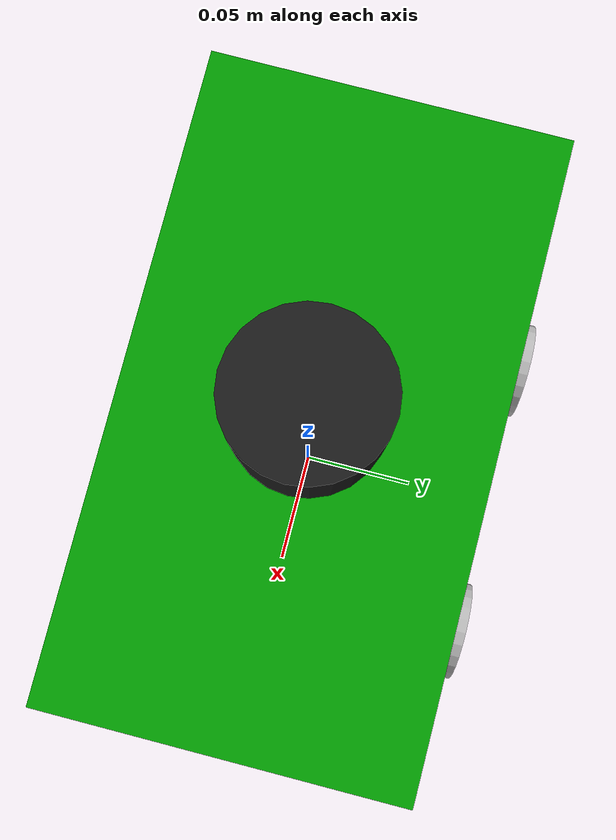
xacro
<?xml version="1.0"?>
<robot name="transcend" xmlns:xacro="http://www.ros.org/wiki/xacro">

  <xacro:include filename="$(find transcend_description)/urdf/common_properties.xacro" />
  <xacro:include filename="$(find transcend_description)/urdf/mobile_base.xacro" />
  <xacro:include filename="$(find transcend_description)/urdf/rover_gaz.xacro" />
</robot>

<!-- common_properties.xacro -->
<robot xmlns:xacro="http://www.ros.org/wiki/xacro">

  <!-- ── MATERIALS ─────────────────────────────────────────────────────── -->
  <material name="green">
    <color rgba="0 0.6 0 1" />
  </material>

  <material name="gray">
    <color rgba="0.7 0.7 0.7 1" />
  </material>

  <material name="black">
    <color rgba="0.1 0.1 0.1 1" />
  </material>

  <!-- ── INERTIA MACROS (Chapter 13) ────────────────────────────────────── -->
  <!-- box inertia -->
  <xacro:macro name="box_inertia" params="m x y z o_xyz o_rpy">
    <inertial>
      <mass value="${m}" />
      <origin xyz="${o_xyz}" rpy="${o_rpy}" />
      <inertia ixx="${(m/12) * (z*z + y*y)}" ixy="0" ixz="0"
               iyy="${(m/12) * (x*x + z*z)}" iyz="0"
               izz="${(m/12) * (x*x + y*y)}" />
    </inertial>
  </xacro:macro>

<!-- Cylinder inertia -->
  <xacro:macro name="cylinder_inertia" params="m r l o_xyz o_rpy">
    <inertial>
      <mass value="${m}" />
      <origin xyz="${o_xyz}" rpy="${o_rpy}" />
      <inertia ixx="${(m/12) * (3*r*r + l*l)}" ixy="0" ixz="0"
               iyy="${(m/12) * (3*r*r + l*l)}" iyz="0"
               izz="${(m/2) * (r*r)}" />
    </inertial>
  </xacro:macro>

<!-- sphere inertia -->
  <xacro:macro name="sphere_inertia" params="m r o_xyz o_rpy">
    <inertial>
      <mass value="${m}" />
      <origin xyz="${o_xyz}" rpy="${o_rpy}" />
      <inertia ixx="${(2/5) * m * r * r}" ixy="0" ixz="0"
               iyy="${(2/5) * m * r * r}" iyz="0"
               izz="${(2/5) * m * r * r}" />
    </inertial>
  </xacro:macro>

</robot>

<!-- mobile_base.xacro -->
<robot xmlns:xacro="http://www.ros.org/wiki/xacro">

  <!--  DIMENSIONS — measured from real rover  -->
  <xacro:property name="base_length"  value="0.25"   />  <!-- meters, front-back -->
  <xacro:property name="base_width"   value="0.14"   />  <!-- meters, left-right  -->
  <xacro:property name="base_height"  value="0.125"  />  <!-- meters, up-down     -->
  <xacro:property name="wheel_radius" value="0.022"  />  <!-- meters              -->
  <xacro:property name="wheel_length" value="0.018"  />  <!-- meters, thickness   -->€

  <!-- WHEEL MACRO -->
  <xacro:macro name="wheel_link" params="prefix">
    <link name="${prefix}_wheel_link">
      <visual>
        <geometry>
          <cylinder radius="${wheel_radius}" length="${wheel_length}" />
        </geometry>
        <origin xyz="0 0 0" rpy="${pi / 2.0} 0 0" />
        <material name="gray" />
      </visual>
      <collision>
        <geometry>
          <sphere radius="${wheel_radius}" />
        </geometry>
        <origin xyz="0 0 0" rpy="0 0 0" />
      </collision>
      <xacro:cylinder_inertia m="1.0" r="${wheel_radius}" l="${wheel_length}"
          o_xyz="0 0 0" o_rpy="${pi / 2.0} 0 0" />
    </link>
  </xacro:macro>

  <!-- LINKS -->
  <link name="base_footprint" />

  <link name="base_link">
    <visual>
      <geometry>
        <box size="${base_length} ${base_width} ${base_height}" />
      </geometry>
      <origin xyz="0 0 ${base_height / 2.0}" rpy="0 0 0" />
      <material name="green" />
    </visual>
    <collision>
      <geometry>
        <box size="${base_length} ${base_width} ${base_height}" />
      </geometry>
      <origin xyz="0 0 ${base_height / 2.0}" rpy="0 0 0" />
    </collision>
    <xacro:box_inertia m="5.0" x="${base_length}" y="${base_width}"
        z="${base_height}" o_xyz="0 0 ${base_height / 2.0}" o_rpy="0 0 0" />
  </link>

  <xacro:wheel_link prefix="front_left"  />
  <xacro:wheel_link prefix="front_right" />
  <xacro:wheel_link prefix="rear_right"  />
  <xacro:wheel_link prefix="rear_left"   />

  <!-- JOINTS -->
  <joint name="base_joint" type="fixed">
    <parent link="base_footprint" />
    <child  link="base_link" />
    <origin xyz="0 0 ${wheel_radius}" rpy="0 0 0" />
  </joint>

  <joint name="base_rear_right_wheel_joint" type="continuous">
    <parent link="base_link" />
    <child  link="rear_right_wheel_link" />
    <origin xyz="${-base_length / 4.0} ${-(base_width + wheel_length) / 2.0} 0"
            rpy="0 0 0" />
    <axis xyz="0 1 0" />
  </joint>

  <joint name="base_rear_left_wheel_joint" type="continuous">
    <parent link="base_link" />
    <child  link="rear_left_wheel_link" />
    <origin xyz="${-base_length / 4.0} ${(base_width + wheel_length) / 2.0} 0"
            rpy="0 0 0" />
    <axis xyz="0 1 0" />
  </joint>

  <joint name="base_front_left_wheel_joint" type="continuous">
    <parent link="base_link" />
    <child  link="front_left_wheel_link" />
    <origin xyz="${base_length / 4.0} ${(base_width + wheel_length) / 2.0} 0"
            rpy="0 0 0" />
    <axis xyz="0 1 0" />
  </joint>

  <joint name="base_front_right_wheel_joint" type="continuous">
    <parent link="base_link" />
    <child  link="front_right_wheel_link" />
    <origin xyz="${base_length / 4.0} ${-(base_width + wheel_length) / 2.0} 0"
            rpy="0 0 0" />
    <axis xyz="0 1 0" />
  </joint>

  <!-- LiDAR mount -->
  <link name="laser_frame">
    <visual>
      <geometry><cylinder length="0.052" radius="0.03"/></geometry>
      <origin xyz="0 0 0.026" rpy="0 0 0" />
      <material name="black"/>
    </visual>
    <collision>
      <geometry><cylinder length="0.052" radius="0.03"/></geometry>
      <origin xyz="0 0 0.026" rpy="0 0 0" />
    </collision>
  </link>

  <joint name="laser_joint" type="fixed">
    <parent link="base_link"/>
    <child link="laser_frame"/>
    <origin xyz="0 0 ${base_height}" rpy="0 0 0"/>
  </joint>

  <ros2_control name="TranscendHardware" type="system">
    <hardware>
      <plugin>transcend_hardware/TranscendHardwareInterface</plugin>
    </hardware>

    <joint name="base_front_left_wheel_joint">
      <command_interface name="velocity">
        <param name="min">-12.9</param>
        <param name="max"> 12.9</param>
      </command_interface>
      <state_interface name="position"/>
      <state_interface name="velocity"/>
    </joint>

    <joint name="base_front_right_wheel_joint">
      <command_interface name="velocity">
        <param name="min">-12.9</param>
        <param name="max"> 12.9</param>
      </command_interface>
      <state_interface name="position"/>
      <state_interface name="velocity"/>
    </joint>

    <joint name="base_rear_left_wheel_joint">
      <command_interface name="velocity">
        <param name="min">-12.9</param>
        <param name="max"> 12.9</param>
      </command_interface>
      <state_interface name="position"/>
      <state_interface name="velocity"/>
    </joint>

    <joint name="base_rear_right_wheel_joint">
      <command_interface name="velocity">
        <param name="min">-12.9</param>
        <param name="max"> 12.9</param>
      </command_interface>
      <state_interface name="position"/>
      <state_interface name="velocity"/>
    </joint>
  </ros2_control>

</robot>
